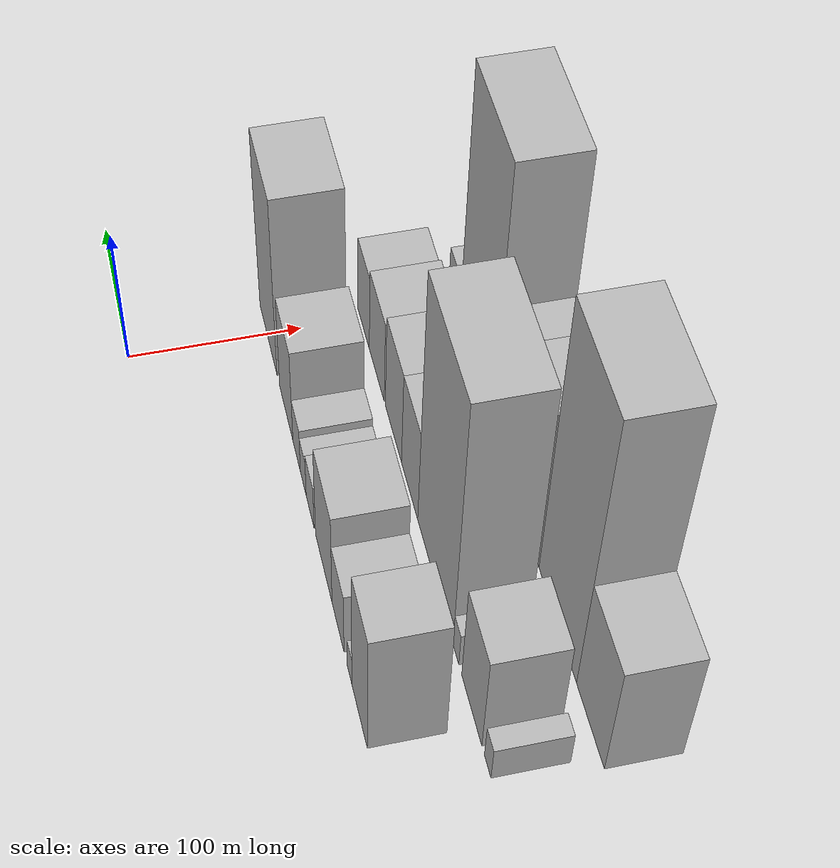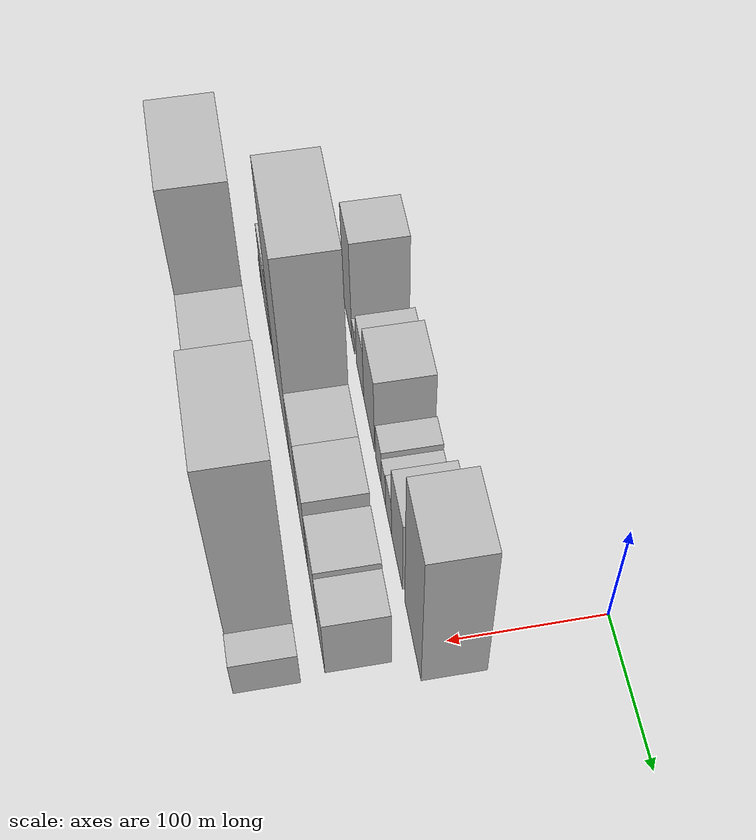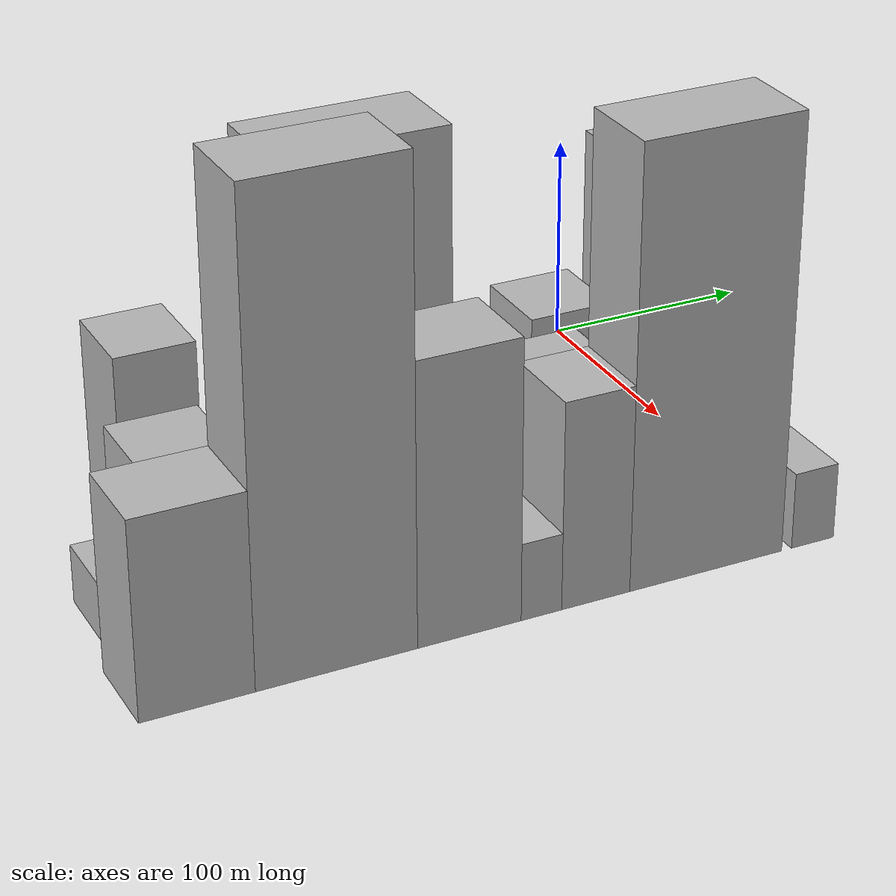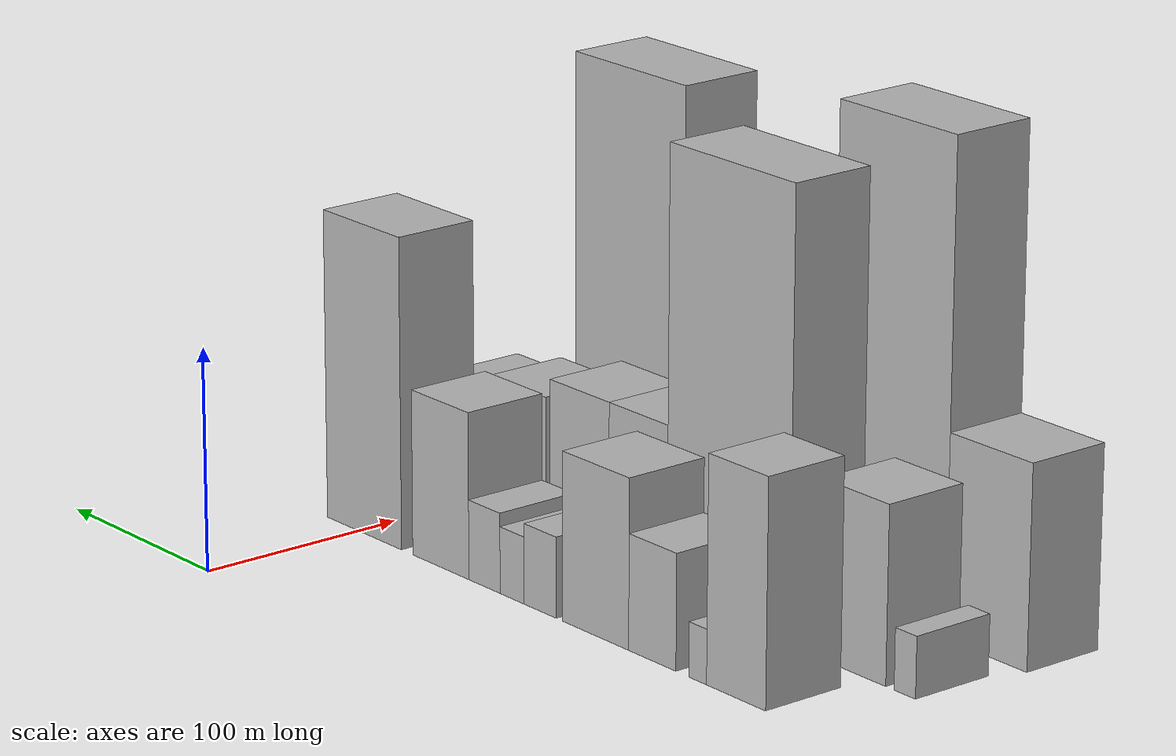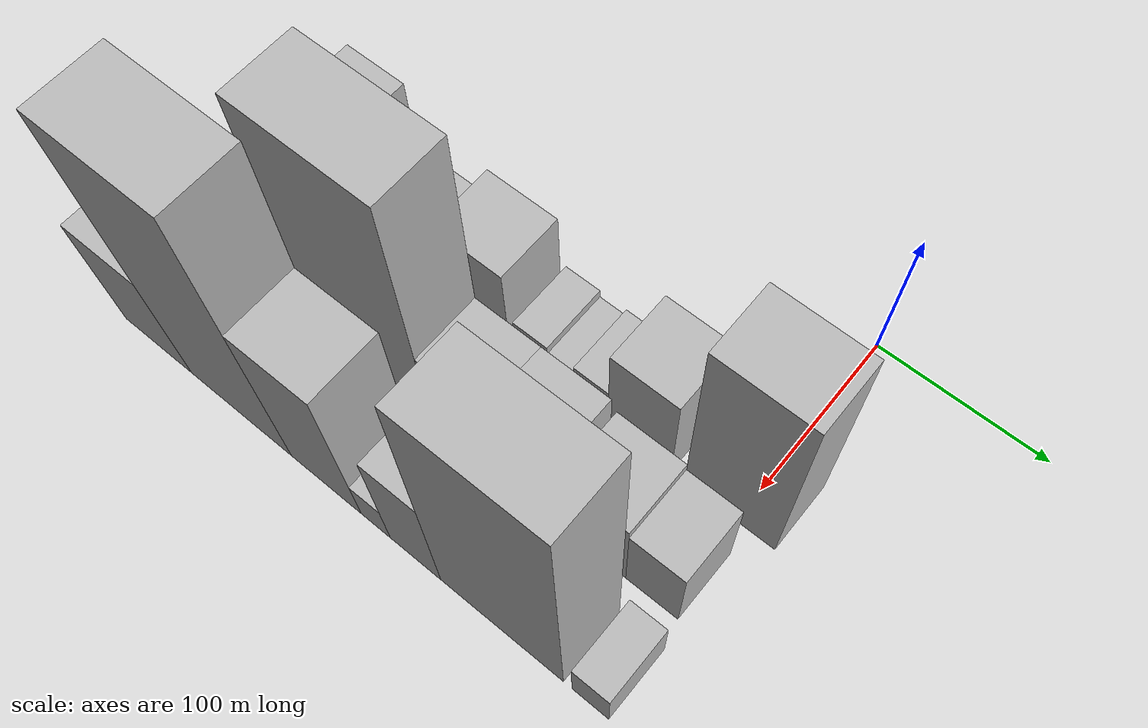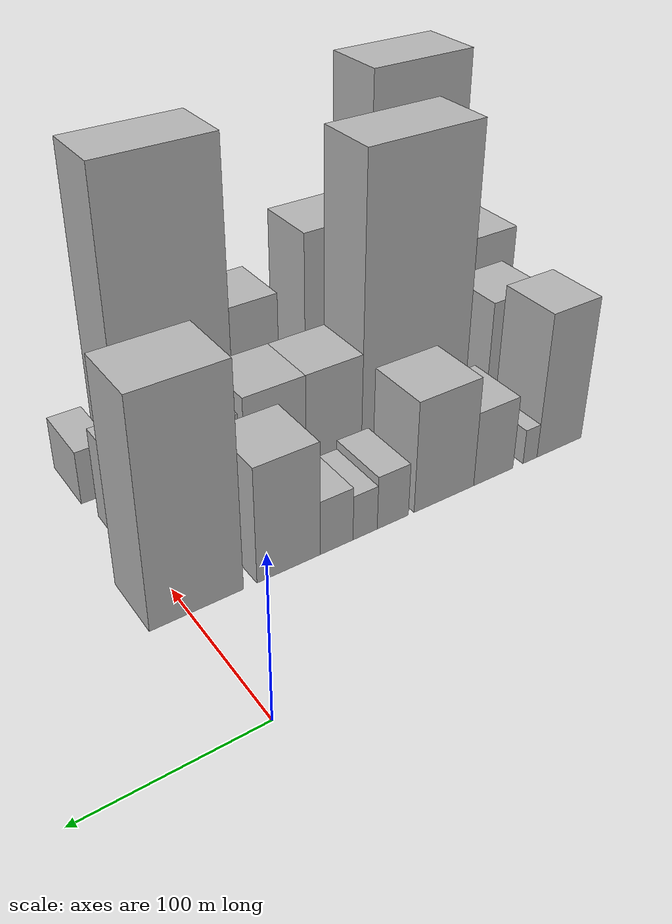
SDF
<sdf version="1.6">
 <world name="default">
  <model name="building_9">
   <static>1</static>
   <pose>100.0000 -251.9656 0 0.000000 0.000000 0.000000</pose>
   <link name="link">
    <pose>0 0 49.50 0 0 0</pose>
    <collision name="collision"><geometry><box><size>40.0000 36.2107 99.0000</size></box></geometry></collision>
    <visual name="visual">
     <cast_shadows>0</cast_shadows>
     <geometry><box><size>40.0000 36.2107 99.0000</size></box></geometry>
     <material>
      <script>
       <uri>model://HANNAS_wall/materials/scripts</uri>
       <uri>model://HANNAS_wall/materials/textures</uri>
       <name>vrc/HANNAS_wall</name>
      </script>
     </material>
    </visual>
   </link>
  </model>
  <model name="building_10">
   <static>1</static>
   <pose>100.0000 -228.2909 0 0.000000 0.000000 0.000000</pose>
   <link name="link">
    <pose>0 0 12.00 0 0 0</pose>
    <collision name="collision"><geometry><box><size>40.0000 11.1388 24.0000</size></box></geometry></collision>
    <visual name="visual">
     <cast_shadows>0</cast_shadows>
     <geometry><box><size>40.0000 11.1388 24.0000</size></box></geometry>
     <material>
      <script>
       <uri>model://HANNAS_wall/materials/scripts</uri>
       <uri>model://HANNAS_wall/materials/textures</uri>
       <name>vrc/HANNAS_wall</name>
      </script>
     </material>
    </visual>
   </link>
  </model>
  <model name="building_11">
   <static>1</static>
   <pose>100.0000 -199.6961 0 0.000000 0.000000 0.000000</pose>
   <link name="link">
    <pose>0 0 25.50 0 0 0</pose>
    <collision name="collision"><geometry><box><size>40.0000 30.0507 51.0000</size></box></geometry></collision>
    <visual name="visual">
     <cast_shadows>0</cast_shadows>
     <geometry><box><size>40.0000 30.0507 51.0000</size></box></geometry>
     <material>
      <script>
       <uri>model://HANNAS_wall/materials/scripts</uri>
       <uri>model://HANNAS_wall/materials/textures</uri>
       <name>vrc/HANNAS_wall</name>
      </script>
     </material>
    </visual>
   </link>
  </model>
  <model name="building_12">
   <static>1</static>
   <pose>100.0000 -163.0340 0 0.000000 0.000000 0.000000</pose>
   <link name="link">
    <pose>0 0 37.50 0 0 0</pose>
    <collision name="collision"><geometry><box><size>40.0000 43.2736 75.0000</size></box></geometry></collision>
    <visual name="visual">
     <cast_shadows>0</cast_shadows>
     <geometry><box><size>40.0000 43.2736 75.0000</size></box></geometry>
     <material>
      <script>
       <uri>model://HANNAS_wall/materials/scripts</uri>
       <uri>model://HANNAS_wall/materials/textures</uri>
       <name>vrc/HANNAS_wall</name>
      </script>
     </material>
    </visual>
   </link>
  </model>
  <model name="building_13">
   <static>1</static>
   <pose>100.0000 -126.6479 0 0.000000 0.000000 0.000000</pose>
   <link name="link">
    <pose>0 0 18.00 0 0 0</pose>
    <collision name="collision"><geometry><box><size>40.0000 21.4987 36.0000</size></box></geometry></collision>
    <visual name="visual">
     <cast_shadows>0</cast_shadows>
     <geometry><box><size>40.0000 21.4987 36.0000</size></box></geometry>
     <material>
      <script>
       <uri>model://HANNAS_wall/materials/scripts</uri>
       <uri>model://HANNAS_wall/materials/textures</uri>
       <name>vrc/HANNAS_wall</name>
      </script>
     </material>
    </visual>
   </link>
  </model>
  <model name="building_14">
   <static>1</static>
   <pose>100.0000 -107.7903 0 0.000000 0.000000 0.000000</pose>
   <link name="link">
    <pose>0 0 15.00 0 0 0</pose>
    <collision name="collision"><geometry><box><size>40.0000 16.2166 30.0000</size></box></geometry></collision>
    <visual name="visual">
     <cast_shadows>0</cast_shadows>
     <geometry><box><size>40.0000 16.2166 30.0000</size></box></geometry>
     <material>
      <script>
       <uri>model://HANNAS_wall/materials/scripts</uri>
       <uri>model://HANNAS_wall/materials/textures</uri>
       <name>vrc/HANNAS_wall</name>
      </script>
     </material>
    </visual>
   </link>
  </model>
  <model name="building_15">
   <static>1</static>
   <pose>100.0000 -88.9805 0 0.000000 0.000000 0.000000</pose>
   <link name="link">
    <pose>0 0 18.00 0 0 0</pose>
    <collision name="collision"><geometry><box><size>40.0000 21.4029 36.0000</size></box></geometry></collision>
    <visual name="visual">
     <cast_shadows>0</cast_shadows>
     <geometry><box><size>40.0000 21.4029 36.0000</size></box></geometry>
     <material>
      <script>
       <uri>model://HANNAS_wall/materials/scripts</uri>
       <uri>model://HANNAS_wall/materials/textures</uri>
       <name>vrc/HANNAS_wall</name>
      </script>
     </material>
    </visual>
   </link>
  </model>
  <model name="building_16">
   <static>1</static>
   <pose>100.0000 -58.6805 0 0.000000 0.000000 0.000000</pose>
   <link name="link">
    <pose>0 0 37.50 0 0 0</pose>
    <collision name="collision"><geometry><box><size>40.0000 39.1971 75.0000</size></box></geometry></collision>
    <visual name="visual">
     <cast_shadows>0</cast_shadows>
     <geometry><box><size>40.0000 39.1971 75.0000</size></box></geometry>
     <material>
      <script>
       <uri>model://HANNAS_wall/materials/scripts</uri>
       <uri>model://HANNAS_wall/materials/textures</uri>
       <name>vrc/HANNAS_wall</name>
      </script>
     </material>
    </visual>
   </link>
  </model>
  <model name="building_17">
   <static>1</static>
   <pose>100.0000 -4.2618 0 0.000000 0.000000 0.000000</pose>
   <link name="link">
    <pose>0 0 70.50 0 0 0</pose>
    <collision name="collision"><geometry><box><size>40.0000 53.6403 141.0000</size></box></geometry></collision>
    <visual name="visual">
     <cast_shadows>0</cast_shadows>
     <geometry><box><size>40.0000 53.6403 141.0000</size></box></geometry>
     <material>
      <script>
       <uri>model://HANNAS_wall/materials/scripts</uri>
       <uri>model://HANNAS_wall/materials/textures</uri>
       <name>vrc/HANNAS_wall</name>
      </script>
     </material>
    </visual>
   </link>
  </model>
  <model name="building_43">
   <static>1</static>
   <pose>155.0000 -291.9751 0 0.000000 0.000000 0.000000</pose>
   <link name="link">
    <pose>0 0 13.50 0 0 0</pose>
    <collision name="collision"><geometry><box><size>40.0000 12.6612 27.0000</size></box></geometry></collision>
    <visual name="visual">
     <cast_shadows>0</cast_shadows>
     <geometry><box><size>40.0000 12.6612 27.0000</size></box></geometry>
     <material>
      <script>
       <uri>model://HANNAS_wall/materials/scripts</uri>
       <uri>model://HANNAS_wall/materials/textures</uri>
       <name>vrc/HANNAS_wall</name>
      </script>
     </material>
    </visual>
   </link>
  </model>
  <model name="building_44">
   <static>1</static>
   <pose>155.0000 -260.3991 0 0.000000 0.000000 0.000000</pose>
   <link name="link">
    <pose>0 0 39.00 0 0 0</pose>
    <collision name="collision"><geometry><box><size>40.0000 40.4910 78.0000</size></box></geometry></collision>
    <visual name="visual">
     <cast_shadows>0</cast_shadows>
     <geometry><box><size>40.0000 40.4910 78.0000</size></box></geometry>
     <material>
      <script>
       <uri>model://HANNAS_wall/materials/scripts</uri>
       <uri>model://HANNAS_wall/materials/textures</uri>
       <name>vrc/HANNAS_wall</name>
      </script>
     </material>
    </visual>
   </link>
  </model>
  <model name="building_45">
   <static>1</static>
   <pose>155.0000 -228.0364 0 0.000000 0.000000 0.000000</pose>
   <link name="link">
    <pose>0 0 13.50 0 0 0</pose>
    <collision name="collision"><geometry><box><size>40.0000 12.2343 27.0000</size></box></geometry></collision>
    <visual name="visual">
     <cast_shadows>0</cast_shadows>
     <geometry><box><size>40.0000 12.2343 27.0000</size></box></geometry>
     <material>
      <script>
       <uri>model://HANNAS_wall/materials/scripts</uri>
       <uri>model://HANNAS_wall/materials/textures</uri>
       <name>vrc/HANNAS_wall</name>
      </script>
     </material>
    </visual>
   </link>
  </model>
  <model name="building_46">
   <static>1</static>
   <pose>155.0000 -182.8427 0 0.000000 0.000000 0.000000</pose>
   <link name="link">
    <pose>0 0 99.00 0 0 0</pose>
    <collision name="collision"><geometry><box><size>40.0000 78.1531 198.0000</size></box></geometry></collision>
    <visual name="visual">
     <cast_shadows>0</cast_shadows>
     <geometry><box><size>40.0000 78.1531 198.0000</size></box></geometry>
     <material>
      <script>
       <uri>model://HANNAS_wall/materials/scripts</uri>
       <uri>model://HANNAS_wall/materials/textures</uri>
       <name>vrc/HANNAS_wall</name>
      </script>
     </material>
    </visual>
   </link>
  </model>
  <model name="building_47">
   <static>1</static>
   <pose>155.0000 -124.4117 0 0.000000 0.000000 0.000000</pose>
   <link name="link">
    <pose>0 0 37.50 0 0 0</pose>
    <collision name="collision"><geometry><box><size>40.0000 38.7090 75.0000</size></box></geometry></collision>
    <visual name="visual">
     <cast_shadows>0</cast_shadows>
     <geometry><box><size>40.0000 38.7090 75.0000</size></box></geometry>
     <material>
      <script>
       <uri>model://HANNAS_wall/materials/scripts</uri>
       <uri>model://HANNAS_wall/materials/textures</uri>
       <name>vrc/HANNAS_wall</name>
      </script>
     </material>
    </visual>
   </link>
  </model>
  <model name="building_48">
   <static>1</static>
   <pose>155.0000 -85.0469 0 0.000000 0.000000 0.000000</pose>
   <link name="link">
    <pose>0 0 37.50 0 0 0</pose>
    <collision name="collision"><geometry><box><size>40.0000 40.0205 75.0000</size></box></geometry></collision>
    <visual name="visual">
     <cast_shadows>0</cast_shadows>
     <geometry><box><size>40.0000 40.0205 75.0000</size></box></geometry>
     <material>
      <script>
       <uri>model://HANNAS_wall/materials/scripts</uri>
       <uri>model://HANNAS_wall/materials/textures</uri>
       <name>vrc/HANNAS_wall</name>
      </script>
     </material>
    </visual>
   </link>
  </model>
  <model name="building_49">
   <static>1</static>
   <pose>155.0000 -42.5896 0 0.000000 0.000000 0.000000</pose>
   <link name="link">
    <pose>0 0 33.00 0 0 0</pose>
    <collision name="collision"><geometry><box><size>40.0000 38.8941 66.0000</size></box></geometry></collision>
    <visual name="visual">
     <cast_shadows>0</cast_shadows>
     <geometry><box><size>40.0000 38.8941 66.0000</size></box></geometry>
     <material>
      <script>
       <uri>model://HANNAS_wall/materials/scripts</uri>
       <uri>model://HANNAS_wall/materials/textures</uri>
       <name>vrc/HANNAS_wall</name>
      </script>
     </material>
    </visual>
   </link>
  </model>
  <model name="building_50">
   <static>1</static>
   <pose>155.0000 -7.7787 0 0.000000 0.000000 0.000000</pose>
   <link name="link">
    <pose>0 0 30.00 0 0 0</pose>
    <collision name="collision"><geometry><box><size>40.0000 30.7278 60.0000</size></box></geometry></collision>
    <visual name="visual">
     <cast_shadows>0</cast_shadows>
     <geometry><box><size>40.0000 30.7278 60.0000</size></box></geometry>
     <material>
      <script>
       <uri>model://HANNAS_wall/materials/scripts</uri>
       <uri>model://HANNAS_wall/materials/textures</uri>
       <name>vrc/HANNAS_wall</name>
      </script>
     </material>
    </visual>
   </link>
  </model>
  <model name="building_76">
   <static>1</static>
   <pose>210.0000 -280.9880 0 0.000000 0.000000 0.000000</pose>
   <link name="link">
    <pose>0 0 45.00 0 0 0</pose>
    <collision name="collision"><geometry><box><size>40.0000 48.4388 90.0000</size></box></geometry></collision>
    <visual name="visual">
     <cast_shadows>0</cast_shadows>
     <geometry><box><size>40.0000 48.4388 90.0000</size></box></geometry>
     <material>
      <script>
       <uri>model://HANNAS_wall/materials/scripts</uri>
       <uri>model://HANNAS_wall/materials/textures</uri>
       <name>vrc/HANNAS_wall</name>
      </script>
     </material>
    </visual>
   </link>
  </model>
  <model name="building_77">
   <static>1</static>
   <pose>210.0000 -221.6760 0 0.000000 0.000000 0.000000</pose>
   <link name="link">
    <pose>0 0 108.00 0 0 0</pose>
    <collision name="collision"><geometry><box><size>40.0000 70.1851 216.0000</size></box></geometry></collision>
    <visual name="visual">
     <cast_shadows>0</cast_shadows>
     <geometry><box><size>40.0000 70.1851 216.0000</size></box></geometry>
     <material>
      <script>
       <uri>model://HANNAS_wall/materials/scripts</uri>
       <uri>model://HANNAS_wall/materials/textures</uri>
       <name>vrc/HANNAS_wall</name>
      </script>
     </material>
    </visual>
   </link>
  </model>
  <model name="building_78">
   <static>1</static>
   <pose>210.0000 -163.2290 0 0.000000 0.000000 0.000000</pose>
   <link name="link">
    <pose>0 0 64.50 0 0 0</pose>
    <collision name="collision"><geometry><box><size>40.0000 46.7090 129.0000</size></box></geometry></collision>
    <visual name="visual">
     <cast_shadows>0</cast_shadows>
     <geometry><box><size>40.0000 46.7090 129.0000</size></box></geometry>
     <material>
      <script>
       <uri>model://HANNAS_wall/materials/scripts</uri>
       <uri>model://HANNAS_wall/materials/textures</uri>
       <name>vrc/HANNAS_wall</name>
      </script>
     </material>
    </visual>
   </link>
  </model>
  <model name="building_79">
   <static>1</static>
   <pose>210.0000 -130.4958 0 0.000000 0.000000 0.000000</pose>
   <link name="link">
    <pose>0 0 18.00 0 0 0</pose>
    <collision name="collision"><geometry><box><size>40.0000 18.7573 36.0000</size></box></geometry></collision>
    <visual name="visual">
     <cast_shadows>0</cast_shadows>
     <geometry><box><size>40.0000 18.7573 36.0000</size></box></geometry>
     <material>
      <script>
       <uri>model://HANNAS_wall/materials/scripts</uri>
       <uri>model://HANNAS_wall/materials/textures</uri>
       <name>vrc/HANNAS_wall</name>
      </script>
     </material>
    </visual>
   </link>
  </model>
  <model name="building_80">
   <static>1</static>
   <pose>210.0000 -105.0839 0 0.000000 0.000000 0.000000</pose>
   <link name="link">
    <pose>0 0 48.00 0 0 0</pose>
    <collision name="collision"><geometry><box><size>40.0000 32.0667 96.0000</size></box></geometry></collision>
    <visual name="visual">
     <cast_shadows>0</cast_shadows>
     <geometry><box><size>40.0000 32.0667 96.0000</size></box></geometry>
     <material>
      <script>
       <uri>model://HANNAS_wall/materials/scripts</uri>
       <uri>model://HANNAS_wall/materials/textures</uri>
       <name>vrc/HANNAS_wall</name>
      </script>
     </material>
    </visual>
   </link>
  </model>
  <model name="building_81">
   <static>1</static>
   <pose>210.0000 -51.9729 0 0.000000 0.000000 0.000000</pose>
   <link name="link">
    <pose>0 0 100.50 0 0 0</pose>
    <collision name="collision"><geometry><box><size>40.0000 74.1553 201.0000</size></box></geometry></collision>
    <visual name="visual">
     <cast_shadows>0</cast_shadows>
     <geometry><box><size>40.0000 74.1553 201.0000</size></box></geometry>
     <material>
      <script>
       <uri>model://HANNAS_wall/materials/scripts</uri>
       <uri>model://HANNAS_wall/materials/textures</uri>
       <name>vrc/HANNAS_wall</name>
      </script>
     </material>
    </visual>
   </link>
  </model>
  <model name="building_82">
   <static>1</static>
   <pose>210.0000 0.6866 0 0.000000 0.000000 0.000000</pose>
   <link name="link">
    <pose>0 0 18.00 0 0 0</pose>
    <collision name="collision"><geometry><box><size>40.0000 21.1638 36.0000</size></box></geometry></collision>
    <visual name="visual">
     <cast_shadows>0</cast_shadows>
     <geometry><box><size>40.0000 21.1638 36.0000</size></box></geometry>
     <material>
      <script>
       <uri>model://HANNAS_wall/materials/scripts</uri>
       <uri>model://HANNAS_wall/materials/textures</uri>
       <name>vrc/HANNAS_wall</name>
      </script>
     </material>
    </visual>
   </link>
  </model>
 </world>
</sdf>
